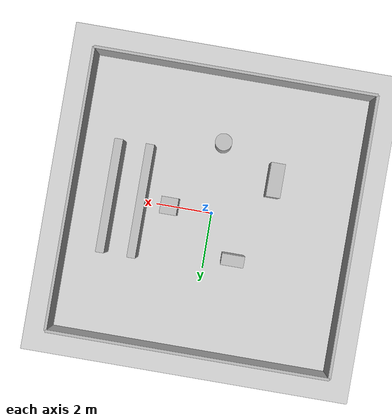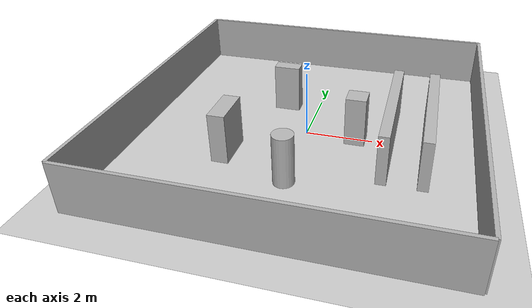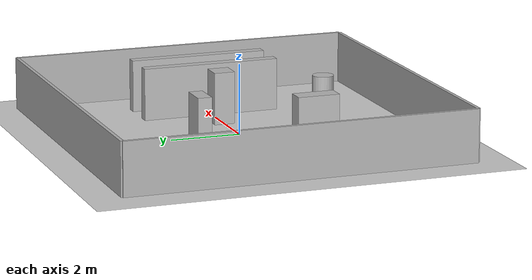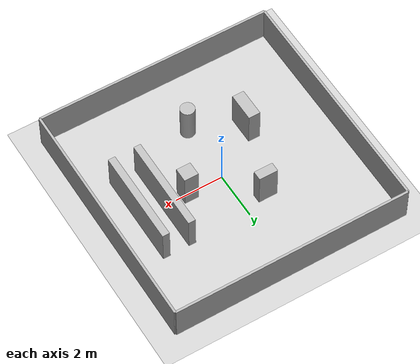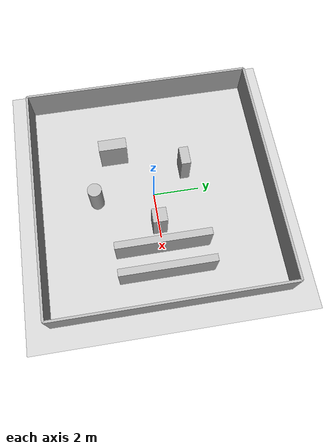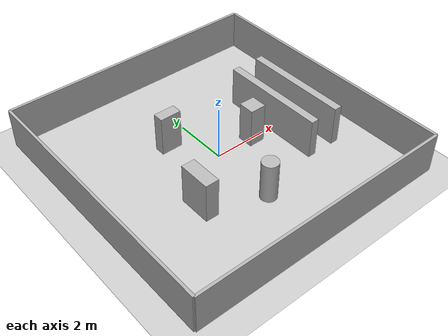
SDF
<?xml version="1.0"?>
<sdf version="1.6">
  <world name="scout_obstacle_course">
    <include>
      <uri>model://ground_plane</uri>
    </include>
    <include>
      <uri>model://sun</uri>
    </include>

    <!-- Boundary walls (10m x 10m area) -->
    <model name="wall_north">
      <static>true</static>
      <pose>0 5 0.75 0 0 0</pose>
      <link name="link">
        <collision name="collision">
          <geometry>
            <box>
              <size>10 0.1 1.5</size>
            </box>
          </geometry>
        </collision>
        <visual name="visual">
          <geometry>
            <box>
              <size>10 0.1 1.5</size>
            </box>
          </geometry>
          <material>
            <ambient>0.7 0.7 0.7 1</ambient>
            <diffuse>0.7 0.7 0.7 1</diffuse>
          </material>
        </visual>
      </link>
    </model>

    <model name="wall_south">
      <static>true</static>
      <pose>0 -5 0.75 0 0 0</pose>
      <link name="link">
        <collision name="collision">
          <geometry>
            <box>
              <size>10 0.1 1.5</size>
            </box>
          </geometry>
        </collision>
        <visual name="visual">
          <geometry>
            <box>
              <size>10 0.1 1.5</size>
            </box>
          </geometry>
          <material>
            <ambient>0.7 0.7 0.7 1</ambient>
            <diffuse>0.7 0.7 0.7 1</diffuse>
          </material>
        </visual>
      </link>
    </model>

    <model name="wall_east">
      <static>true</static>
      <pose>5 0 0.75 0 0 0</pose>
      <link name="link">
        <collision name="collision">
          <geometry>
            <box>
              <size>0.1 10 1.5</size>
            </box>
          </geometry>
        </collision>
        <visual name="visual">
          <geometry>
            <box>
              <size>0.1 10 1.5</size>
            </box>
          </geometry>
          <material>
            <ambient>0.7 0.7 0.7 1</ambient>
            <diffuse>0.7 0.7 0.7 1</diffuse>
          </material>
        </visual>
      </link>
    </model>

    <model name="wall_west">
      <static>true</static>
      <pose>-5 0 0.75 0 0 0</pose>
      <link name="link">
        <collision name="collision">
          <geometry>
            <box>
              <size>0.1 10 1.5</size>
            </box>
          </geometry>
        </collision>
        <visual name="visual">
          <geometry>
            <box>
              <size>0.1 10 1.5</size>
            </box>
          </geometry>
          <material>
            <ambient>0.7 0.7 0.7 1</ambient>
            <diffuse>0.7 0.7 0.7 1</diffuse>
          </material>
        </visual>
      </link>
    </model>

    <!-- Interior obstacles -->
    <model name="box_1">
      <static>true</static>
      <pose>1.5 0 0.75 0 0 0</pose>
      <link name="link">
        <collision name="collision">
          <geometry>
            <box>
              <size>0.6 0.6 1.5</size>
            </box>
          </geometry>
        </collision>
        <visual name="visual">
          <geometry>
            <box>
              <size>0.6 0.6 1.5</size>
            </box>
          </geometry>
        </visual>
      </link>
    </model>

    <model name="box_2">
      <static>true</static>
      <pose>-1 1.5 0.75 0 0 0</pose>
      <link name="link">
        <collision name="collision">
          <geometry>
            <box>
              <size>0.8 0.4 1.5</size>
            </box>
          </geometry>
        </collision>
        <visual name="visual">
          <geometry>
            <box>
              <size>0.8 0.4 1.5</size>
            </box>
          </geometry>
        </visual>
      </link>
    </model>

    <model name="box_3">
      <static>true</static>
      <pose>-2 -1.5 0.75 0 0 0</pose>
      <link name="link">
        <collision name="collision">
          <geometry>
            <box>
              <size>0.5 1.2 1.5</size>
            </box>
          </geometry>
        </collision>
        <visual name="visual">
          <geometry>
            <box>
              <size>0.5 1.2 1.5</size>
            </box>
          </geometry>
        </visual>
      </link>
    </model>

    <model name="cylinder_1">
      <static>true</static>
      <pose>0 -2.5 0.75 0 0 0</pose>
      <link name="link">
        <collision name="collision">
          <geometry>
            <cylinder>
              <radius>0.3</radius>
              <length>1.5</length>
            </cylinder>
          </geometry>
        </collision>
        <visual name="visual">
          <geometry>
            <cylinder>
              <radius>0.3</radius>
              <length>1.5</length>
            </cylinder>
          </geometry>
        </visual>
      </link>
    </model>

    <!-- Narrow passage (gap ~0.8m) -->
    <model name="lane_left">
      <static>true</static>
      <pose>2.5 0 0.75 0 0 0</pose>
      <link name="link">
        <collision name="collision">
          <geometry>
            <box>
              <size>0.3 4.0 1.5</size>
            </box>
          </geometry>
        </collision>
        <visual name="visual">
          <geometry>
            <box>
              <size>0.3 4.0 1.5</size>
            </box>
          </geometry>
        </visual>
      </link>
    </model>

    <model name="lane_right">
      <static>true</static>
      <pose>3.6 0 0.75 0 0 0</pose>
      <link name="link">
        <collision name="collision">
          <geometry>
            <box>
              <size>0.3 4.0 1.5</size>
            </box>
          </geometry>
        </collision>
        <visual name="visual">
          <geometry>
            <box>
              <size>0.3 4.0 1.5</size>
            </box>
          </geometry>
        </visual>
      </link>
    </model>
  </world>
</sdf>
